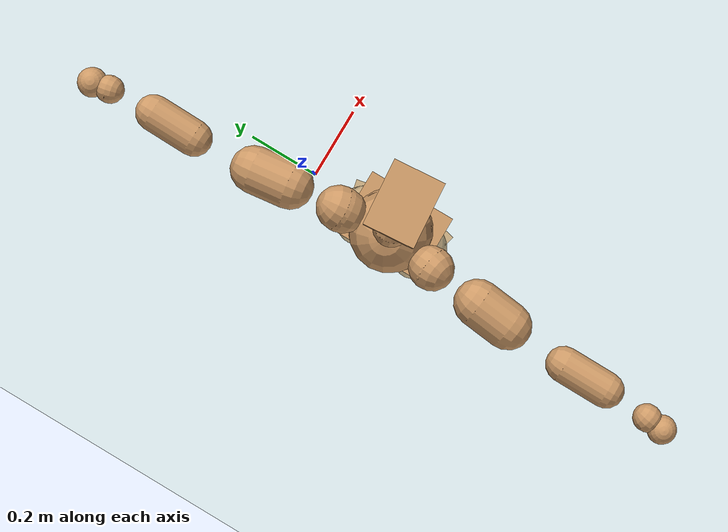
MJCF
<mujoco model="humanoid">
  <compiler coordinate="local" angle="radian"/>
  <default>
    <joint damping="0.0" armature="0.01" stiffness="0.0" limited="true"/>
    <geom conaffinity="1" condim="3" contype="7" margin="0.001" rgba="0.8 0.6 .4 1"/>
  </default>
  <asset>
    <texture type="skybox" builtin="gradient" rgb1=".4 .5 .6" rgb2="0 0 0" width="100" height="100"/>
    <texture builtin="flat" height="1278" mark="cross" markrgb="1 1 1" name="texgeom" random="0.01" rgb1="0.8 0.6 0.4" rgb2="0.8 0.6 0.4" type="cube" width="127"/>
    <texture builtin="checker" height="100" name="texplane" rgb1="0 0 0" rgb2="0.8 0.8 0.8" type="2d" width="100"/>
    <material name="MatPlane" reflectance="0.5" shininess="1" specular="1" texrepeat="60 60" texture="texplane"/>
    <material name="geom" texture="texgeom" texuniform="true"/>
  </asset>
  <worldbody>
    <light cutoff="100" diffuse="1 1 1" dir="-0 0 -1.3" directional="true" exponent="1" pos="0 0 1.3" specular=".1 .1 .1"/>
    <geom conaffinity="1" condim="3" name="floor" pos="0 0 0" rgba="0.8 0.9 0.8 1" size="100 100 .2" type="plane" material="MatPlane"/>
    <body name="Pelvis" pos="-0.0003 -0.2564 0.0376">
      <freejoint name="Pelvis"/>
      <geom type="box" contype="1" conaffinity="1" density="5359.375498" pos="-0.0068 -0.0001 -0.0134" size="0.0945 0.1253 0.0456" quat="1.0000 0.0000 0.0000 0.0042" name="Pelvis"/>
      <body name="L_Hip" pos="-0.0055 0.0817 -0.0999">
        <joint name="L_Hip_x" type="hinge" pos="0 0 0" axis="1 0 0" stiffness="1600" damping="160" armature="0.02" range="-180.0000 180.0000"/>
        <joint name="L_Hip_y" type="hinge" pos="0 0 0" axis="0 1 0" stiffness="1600" damping="160" armature="0.02" range="-180.0000 180.0000"/>
        <joint name="L_Hip_z" type="hinge" pos="0 0 0" axis="0 0 1" stiffness="1600" damping="160" armature="0.02" range="-180.0000 180.0000"/>
        <geom type="capsule" contype="1" conaffinity="1" density="2040.816327" size="0.0715" fromto="-0.0016 0.0086 -0.1012 -0.0044 0.0242 -0.2844" name="L_Hip"/>
        <body name="L_Knee" pos="-0.006 0.0328 -0.3856">
          <joint name="L_Knee_x" type="hinge" pos="0 0 0" axis="1 0 0" stiffness="1600" damping="160" armature="0.02" range="-180.0000 180.0000"/>
          <joint name="L_Knee_y" type="hinge" pos="0 0 0" axis="0 1 0" stiffness="1600" damping="160" armature="0.02" range="-180.0000 180.0000"/>
          <joint name="L_Knee_z" type="hinge" pos="0 0 0" axis="0 0 1" stiffness="1600" damping="160" armature="0.02" range="-180.0000 180.0000"/>
          <geom type="capsule" contype="1" conaffinity="1" density="1234.567901" size="0.0617" fromto="-0.0113 -0.0027 -0.0910 -0.0393 -0.0095 -0.3156" name="L_Knee"/>
          <body name="L_Ankle" pos="-0.0506 -0.0123 -0.4066">
            <joint name="L_Ankle_x" type="hinge" pos="0 0 0" axis="1 0 0" stiffness="1600" damping="160" armature="0.02" range="-180.0000 180.0000"/>
            <joint name="L_Ankle_y" type="hinge" pos="0 0 0" axis="0 1 0" stiffness="1600" damping="160" armature="0.02" range="-180.0000 180.0000"/>
            <joint name="L_Ankle_z" type="hinge" pos="0 0 0" axis="0 0 1" stiffness="1600" damping="160" armature="0.02" range="-180.0000 180.0000"/>
            <geom type="box" contype="1" conaffinity="1" density="1000.000012" pos="0.0628 0.0135 -0.0295" size="0.0908 0.0513 0.0215" quat="0.9944 0.0000 0.0000 0.1056" name="L_Ankle"/>
            <body name="L_Toe" pos="0.1256 0.027 -0.0589">
              <joint name="L_Toe_x" type="hinge" pos="0 0 0" axis="1 0 0" stiffness="1000" damping="100" armature="0.02" range="-180.0000 180.0000"/>
              <joint name="L_Toe_y" type="hinge" pos="0 0 0" axis="0 1 0" stiffness="1000" damping="100" armature="0.02" range="-180.0000 180.0000"/>
              <joint name="L_Toe_z" type="hinge" pos="0 0 0" axis="0 0 1" stiffness="1000" damping="100" armature="0.02" range="-180.0000 180.0000"/>
              <geom type="box" contype="1" conaffinity="1" density="8537290.948561" pos="0.0000 0.0000 0.0312" size="0.001 0.0025 0.0012" quat="0.9938 0.0000 0.0000 0.1115" name="L_Toe"/>
            </body>
          </body>
        </body>
      </body>
      <body name="R_Hip" pos="-0.0032 -0.0775 -0.0987">
        <joint name="R_Hip_x" type="hinge" pos="0 0 0" axis="1 0 0" stiffness="1600" damping="160" armature="0.02" range="-180.0000 180.0000"/>
        <joint name="R_Hip_y" type="hinge" pos="0 0 0" axis="0 1 0" stiffness="1600" damping="160" armature="0.02" range="-180.0000 180.0000"/>
        <joint name="R_Hip_z" type="hinge" pos="0 0 0" axis="0 0 1" stiffness="1600" damping="160" armature="0.02" range="-180.0000 180.0000"/>
        <geom type="capsule" contype="1" conaffinity="1" density="2040.816327" size="0.0707" fromto="-0.0025 -0.0099 -0.1002 -0.0073 -0.0290 -0.2936" name="R_Hip"/>
        <body name="R_Knee" pos="-0.0097 -0.0389 -0.3938">
          <joint name="R_Knee_x" type="hinge" pos="0 0 0" axis="1 0 0" stiffness="1600" damping="160" armature="0.02" range="-180.0000 180.0000"/>
          <joint name="R_Knee_y" type="hinge" pos="0 0 0" axis="0 1 0" stiffness="1600" damping="160" armature="0.02" range="-180.0000 180.0000"/>
          <joint name="R_Knee_z" type="hinge" pos="0 0 0" axis="0 0 1" stiffness="1600" damping="160" armature="0.02" range="-180.0000 180.0000"/>
          <geom type="capsule" contype="1" conaffinity="1" density="1234.567901" size="0.0618" fromto="-0.0112 0.0031 -0.0911 -0.0389 0.0107 -0.3149" name="R_Knee"/>
          <body name="R_Ankle" pos="-0.0501 0.0139 -0.4059">
            <joint name="R_Ankle_x" type="hinge" pos="0 0 0" axis="1 0 0" stiffness="1600" damping="160" armature="0.02" range="-180.0000 180.0000"/>
            <joint name="R_Ankle_y" type="hinge" pos="0 0 0" axis="0 1 0" stiffness="1600" damping="160" armature="0.02" range="-180.0000 180.0000"/>
            <joint name="R_Ankle_z" type="hinge" pos="0 0 0" axis="0 0 1" stiffness="1600" damping="160" armature="0.02" range="-180.0000 180.0000"/>
            <geom type="box" contype="1" conaffinity="1" density="999.999975" pos="0.0648 -0.0136 -0.0248" size="0.0907 0.0502 0.0216" quat="0.9947 0.0000 0.0000 -0.1033" name="R_Ankle"/>
            <body name="R_Toe" pos="0.1295 -0.0272 -0.0496">
              <joint name="R_Toe_x" type="hinge" pos="0 0 0" axis="1 0 0" stiffness="1000" damping="100" armature="0.02" range="-180.0000 180.0000"/>
              <joint name="R_Toe_y" type="hinge" pos="0 0 0" axis="0 1 0" stiffness="1000" damping="100" armature="0.02" range="-180.0000 180.0000"/>
              <joint name="R_Toe_z" type="hinge" pos="0 0 0" axis="0 0 1" stiffness="1000" damping="100" armature="0.02" range="-180.0000 180.0000"/>
              <geom type="box" contype="1" conaffinity="1" density="8388225.404211" pos="0.0000 0.0000 0.0285" size="0.0009 0.0025 0.0013" quat="0.9955 0.0000 0.0000 -0.0945" name="R_Toe"/>
            </body>
          </body>
        </body>
      </body>
      <body name="Torso" pos="-0.0323 -0.0045 0.1182">
        <joint name="Torso_x" type="hinge" pos="0 0 0" axis="1 0 0" stiffness="2000" damping="200" armature="0.02" range="-180.0000 180.0000"/>
        <joint name="Torso_y" type="hinge" pos="0 0 0" axis="0 1 0" stiffness="2000" damping="200" armature="0.02" range="-180.0000 180.0000"/>
        <joint name="Torso_z" type="hinge" pos="0 0 0" axis="0 0 1" stiffness="2000" damping="200" armature="0.02" range="-180.0000 180.0000"/>
        <geom type="capsule" contype="1" conaffinity="1" density="2040.816327" size="0.08" fromto="-0.0048 0.0028 0.0783 -0.0049 0.0029 0.0803" name="Torso"/>
        <body name="Spine" pos="-0.0097 0.0057 0.1586">
          <joint name="Spine_x" type="hinge" pos="0 0 0" axis="1 0 0" stiffness="2000" damping="200" armature="0.02" range="-180.0000 180.0000"/>
          <joint name="Spine_y" type="hinge" pos="0 0 0" axis="0 1 0" stiffness="2000" damping="200" armature="0.02" range="-180.0000 180.0000"/>
          <joint name="Spine_z" type="hinge" pos="0 0 0" axis="0 0 1" stiffness="2000" damping="200" armature="0.02" range="-180.0000 180.0000"/>
          <geom type="capsule" contype="1" conaffinity="1" density="2040.816327" size="0.0769" fromto="0.0400 0.0012 0.0657 -0.0050 -0.0001 -0.0082" name="Spine"/>
          <body name="Chest" pos="0.035 0.001 0.0575">
            <joint name="Chest_x" type="hinge" pos="0 0 0" axis="1 0 0" stiffness="2000" damping="200" armature="0.02" range="-180.0000 180.0000"/>
            <joint name="Chest_y" type="hinge" pos="0 0 0" axis="0 1 0" stiffness="2000" damping="200" armature="0.02" range="-180.0000 180.0000"/>
            <joint name="Chest_z" type="hinge" pos="0 0 0" axis="0 0 1" stiffness="2000" damping="200" armature="0.02" range="-180.0000 180.0000"/>
            <geom type="capsule" contype="1" conaffinity="1" density="2040.816327" size="0.1024" fromto="-0.0270 -0.0004 0.0987 -0.0181 -0.0003 0.0661" name="Chest"/>
            <body name="Neck" pos="-0.0497 -0.0013 0.2371">
              <joint name="Neck_x" type="hinge" pos="0 0 0" axis="1 0 0" stiffness="1000" damping="100" armature="0.02" range="-180.0000 180.0000"/>
              <joint name="Neck_y" type="hinge" pos="0 0 0" axis="0 1 0" stiffness="1000" damping="100" armature="0.02" range="-180.0000 180.0000"/>
              <joint name="Neck_z" type="hinge" pos="0 0 0" axis="0 0 1" stiffness="1000" damping="100" armature="0.02" range="-180.0000 180.0000"/>
              <geom type="capsule" contype="1" conaffinity="1" density="1000" size="0.0447" fromto="0.0279 0.0016 0.0357 0.0292 0.0017 0.0373" name="Neck"/>
              <body name="Head" pos="0.0571 0.0033 0.073">
                <joint name="Head_x" type="hinge" pos="0 0 0" axis="1 0 0" stiffness="1000" damping="100" armature="0.02" range="-180.0000 180.0000"/>
                <joint name="Head_y" type="hinge" pos="0 0 0" axis="0 1 0" stiffness="1000" damping="100" armature="0.02" range="-180.0000 180.0000"/>
                <joint name="Head_z" type="hinge" pos="0 0 0" axis="0 0 1" stiffness="1000" damping="100" armature="0.02" range="-180.0000 180.0000"/>
                <geom type="box" contype="1" conaffinity="1" density="2250.000041" pos="0.0296 0.0026 0.0375" size="0.0809 0.0633 0.056" quat="0.9990 0.0000 0.0000 0.0446" name="Head"/>
              </body>
            </body>
            <body name="L_Thorax" pos="-0.039 0.0807 0.1304">
              <joint name="L_Thorax_x" type="hinge" pos="0 0 0" axis="1 0 0" stiffness="1000" damping="100" armature="0.02" range="-180.0000 180.0000"/>
              <joint name="L_Thorax_y" type="hinge" pos="0 0 0" axis="0 1 0" stiffness="1000" damping="100" armature="0.02" range="-180.0000 180.0000"/>
              <joint name="L_Thorax_z" type="hinge" pos="0 0 0" axis="0 0 1" stiffness="1000" damping="100" armature="0.02" range="-180.0000 180.0000"/>
              <geom type="capsule" contype="1" conaffinity="1" density="1000" size="0.0561" fromto="-0.0042 0.0520 0.0206 -0.0033 0.0407 0.0161" name="L_Thorax"/>
              <body name="L_Shoulder" pos="-0.0075 0.0927 0.0367">
                <joint name="L_Shoulder_x" type="hinge" pos="0 0 0" axis="1 0 0" stiffness="1000" damping="100" armature="0.02" range="-720.0000 720.0000"/>
                <joint name="L_Shoulder_y" type="hinge" pos="0 0 0" axis="0 1 0" stiffness="1000" damping="100" armature="0.02" range="-720.0000 720.0000"/>
                <joint name="L_Shoulder_z" type="hinge" pos="0 0 0" axis="0 0 1" stiffness="1000" damping="100" armature="0.02" range="-720.0000 720.0000"/>
                <geom type="capsule" contype="1" conaffinity="1" density="1000" size="0.0582" fromto="-0.0113 0.0873 -0.0060 -0.0234 0.1803 -0.0124" name="L_Shoulder"/>
                <body name="L_Elbow" pos="-0.0347 0.2676 -0.0184">
                  <joint name="L_Elbow_x" type="hinge" pos="0 0 0" axis="1 0 0" stiffness="1000" damping="100" armature="0.02" range="-720.0000 720.0000"/>
                  <joint name="L_Elbow_y" type="hinge" pos="0 0 0" axis="0 1 0" stiffness="1000" damping="100" armature="0.02" range="-720.0000 720.0000"/>
                  <joint name="L_Elbow_z" type="hinge" pos="0 0 0" axis="0 0 1" stiffness="1000" damping="100" armature="0.02" range="-720.0000 720.0000"/>
                  <geom type="capsule" contype="1" conaffinity="1" density="1000" size="0.0443" fromto="0.0011 0.0742 0.0028 0.0027 0.1877 0.0070" name="L_Elbow"/>
                  <body name="L_Wrist" pos="0.0037 0.262 0.0097">
                    <joint name="L_Wrist_x" type="hinge" pos="0 0 0" axis="1 0 0" stiffness="600" damping="60" armature="0.02" range="-180.0000 180.0000"/>
                    <joint name="L_Wrist_y" type="hinge" pos="0 0 0" axis="0 1 0" stiffness="600" damping="60" armature="0.02" range="-180.0000 180.0000"/>
                    <joint name="L_Wrist_z" type="hinge" pos="0 0 0" axis="0 0 1" stiffness="600" damping="60" armature="0.02" range="-180.0000 180.0000"/>
                    <geom type="capsule" contype="1" conaffinity="1" density="1000" size="0.0343" fromto="-0.0072 0.0442 -0.0054 -0.0076 0.0462 -0.0057" name="L_Wrist"/>
                    <body name="L_Hand" pos="-0.0148 0.0904 -0.0111">
                      <joint name="L_Hand_x" type="hinge" pos="0 0 0" axis="1 0 0" stiffness="600" damping="60" armature="0.02" range="-180.0000 180.0000"/>
                      <joint name="L_Hand_y" type="hinge" pos="0 0 0" axis="0 1 0" stiffness="600" damping="60" armature="0.02" range="-180.0000 180.0000"/>
                      <joint name="L_Hand_z" type="hinge" pos="0 0 0" axis="0 0 1" stiffness="600" damping="60" armature="0.02" range="-180.0000 180.0000"/>
                      <geom type="sphere" contype="1" conaffinity="1" density="1000" size="0.0365" pos="0.0000 0.0000 0.0000" name="L_Hand"/>
                    </body>
                  </body>
                </body>
              </body>
            </body>
            <body name="R_Thorax" pos="-0.0468 -0.0814 0.127">
              <joint name="R_Thorax_x" type="hinge" pos="0 0 0" axis="1 0 0" stiffness="1000" damping="100" armature="0.02" range="-180.0000 180.0000"/>
              <joint name="R_Thorax_y" type="hinge" pos="0 0 0" axis="0 1 0" stiffness="1000" damping="100" armature="0.02" range="-180.0000 180.0000"/>
              <joint name="R_Thorax_z" type="hinge" pos="0 0 0" axis="0 0 1" stiffness="1000" damping="100" armature="0.02" range="-180.0000 180.0000"/>
              <geom type="capsule" contype="1" conaffinity="1" density="1000" size="0.0546" fromto="-0.0049 -0.0511 0.0184 -0.0045 -0.0473 0.0170" name="R_Thorax"/>
              <body name="R_Shoulder" pos="-0.0094 -0.0984 0.0354">
                <joint name="R_Shoulder_x" type="hinge" pos="0 0 0" axis="1 0 0" stiffness="1000" damping="100" armature="0.02" range="-720.0000 720.0000"/>
                <joint name="R_Shoulder_y" type="hinge" pos="0 0 0" axis="0 1 0" stiffness="1000" damping="100" armature="0.02" range="-720.0000 720.0000"/>
                <joint name="R_Shoulder_z" type="hinge" pos="0 0 0" axis="0 0 1" stiffness="1000" damping="100" armature="0.02" range="-720.0000 720.0000"/>
                <geom type="capsule" contype="1" conaffinity="1" density="1000" size="0.0587" fromto="-0.0090 -0.0881 -0.0054 -0.0183 -0.1783 -0.0109" name="R_Shoulder"/>
                <body name="R_Elbow" pos="-0.0273 -0.2664 -0.0162">
                  <joint name="R_Elbow_x" type="hinge" pos="0 0 0" axis="1 0 0" stiffness="1000" damping="100" armature="0.02" range="-720.0000 720.0000"/>
                  <joint name="R_Elbow_y" type="hinge" pos="0 0 0" axis="0 1 0" stiffness="1000" damping="100" armature="0.02" range="-720.0000 720.0000"/>
                  <joint name="R_Elbow_z" type="hinge" pos="0 0 0" axis="0 0 1" stiffness="1000" damping="100" armature="0.02" range="-720.0000 720.0000"/>
                  <geom type="capsule" contype="1" conaffinity="1" density="1000" size="0.0439" fromto="-0.0000 -0.0738 0.0025 -0.0001 -0.1920 0.0065" name="R_Elbow"/>
                  <body name="R_Wrist" pos="-0.0002 -0.2658 0.0091">
                    <joint name="R_Wrist_x" type="hinge" pos="0 0 0" axis="1 0 0" stiffness="600" damping="60" armature="0.02" range="-180.0000 180.0000"/>
                    <joint name="R_Wrist_y" type="hinge" pos="0 0 0" axis="0 1 0" stiffness="600" damping="60" armature="0.02" range="-180.0000 180.0000"/>
                    <joint name="R_Wrist_z" type="hinge" pos="0 0 0" axis="0 0 1" stiffness="600" damping="60" armature="0.02" range="-180.0000 180.0000"/>
                    <geom type="capsule" contype="1" conaffinity="1" density="1000" size="0.0345" fromto="-0.0057 -0.0439 -0.0039 -0.0060 -0.0459 -0.0041" name="R_Wrist"/>
                    <body name="R_Hand" pos="-0.0116 -0.0898 -0.008">
                      <joint name="R_Hand_x" type="hinge" pos="0 0 0" axis="1 0 0" stiffness="600" damping="60" armature="0.02" range="-180.0000 180.0000"/>
                      <joint name="R_Hand_y" type="hinge" pos="0 0 0" axis="0 1 0" stiffness="600" damping="60" armature="0.02" range="-180.0000 180.0000"/>
                      <joint name="R_Hand_z" type="hinge" pos="0 0 0" axis="0 0 1" stiffness="600" damping="60" armature="0.02" range="-180.0000 180.0000"/>
                      <geom type="sphere" contype="1" conaffinity="1" density="1000" size="0.0361" pos="0.0000 0.0000 0.0000" name="R_Hand"/>
                    </body>
                  </body>
                </body>
              </body>
            </body>
          </body>
        </body>
      </body>
    </body>
  </worldbody>
  <actuator>
    <motor name="L_Hip_x" joint="L_Hip_x" gear="500"/>
    <motor name="L_Hip_y" joint="L_Hip_y" gear="500"/>
    <motor name="L_Hip_z" joint="L_Hip_z" gear="500"/>
    <motor name="L_Knee_x" joint="L_Knee_x" gear="500"/>
    <motor name="L_Knee_y" joint="L_Knee_y" gear="500"/>
    <motor name="L_Knee_z" joint="L_Knee_z" gear="500"/>
    <motor name="L_Ankle_x" joint="L_Ankle_x" gear="500"/>
    <motor name="L_Ankle_y" joint="L_Ankle_y" gear="500"/>
    <motor name="L_Ankle_z" joint="L_Ankle_z" gear="500"/>
    <motor name="L_Toe_x" joint="L_Toe_x" gear="500"/>
    <motor name="L_Toe_y" joint="L_Toe_y" gear="500"/>
    <motor name="L_Toe_z" joint="L_Toe_z" gear="500"/>
    <motor name="R_Hip_x" joint="R_Hip_x" gear="500"/>
    <motor name="R_Hip_y" joint="R_Hip_y" gear="500"/>
    <motor name="R_Hip_z" joint="R_Hip_z" gear="500"/>
    <motor name="R_Knee_x" joint="R_Knee_x" gear="500"/>
    <motor name="R_Knee_y" joint="R_Knee_y" gear="500"/>
    <motor name="R_Knee_z" joint="R_Knee_z" gear="500"/>
    <motor name="R_Ankle_x" joint="R_Ankle_x" gear="500"/>
    <motor name="R_Ankle_y" joint="R_Ankle_y" gear="500"/>
    <motor name="R_Ankle_z" joint="R_Ankle_z" gear="500"/>
    <motor name="R_Toe_x" joint="R_Toe_x" gear="500"/>
    <motor name="R_Toe_y" joint="R_Toe_y" gear="500"/>
    <motor name="R_Toe_z" joint="R_Toe_z" gear="500"/>
    <motor name="Torso_x" joint="Torso_x" gear="500"/>
    <motor name="Torso_y" joint="Torso_y" gear="500"/>
    <motor name="Torso_z" joint="Torso_z" gear="500"/>
    <motor name="Spine_x" joint="Spine_x" gear="500"/>
    <motor name="Spine_y" joint="Spine_y" gear="500"/>
    <motor name="Spine_z" joint="Spine_z" gear="500"/>
    <motor name="Chest_x" joint="Chest_x" gear="500"/>
    <motor name="Chest_y" joint="Chest_y" gear="500"/>
    <motor name="Chest_z" joint="Chest_z" gear="500"/>
    <motor name="Neck_x" joint="Neck_x" gear="500"/>
    <motor name="Neck_y" joint="Neck_y" gear="500"/>
    <motor name="Neck_z" joint="Neck_z" gear="500"/>
    <motor name="Head_x" joint="Head_x" gear="500"/>
    <motor name="Head_y" joint="Head_y" gear="500"/>
    <motor name="Head_z" joint="Head_z" gear="500"/>
    <motor name="L_Thorax_x" joint="L_Thorax_x" gear="500"/>
    <motor name="L_Thorax_y" joint="L_Thorax_y" gear="500"/>
    <motor name="L_Thorax_z" joint="L_Thorax_z" gear="500"/>
    <motor name="L_Shoulder_x" joint="L_Shoulder_x" gear="500"/>
    <motor name="L_Shoulder_y" joint="L_Shoulder_y" gear="500"/>
    <motor name="L_Shoulder_z" joint="L_Shoulder_z" gear="500"/>
    <motor name="L_Elbow_x" joint="L_Elbow_x" gear="500"/>
    <motor name="L_Elbow_y" joint="L_Elbow_y" gear="500"/>
    <motor name="L_Elbow_z" joint="L_Elbow_z" gear="500"/>
    <motor name="L_Wrist_x" joint="L_Wrist_x" gear="500"/>
    <motor name="L_Wrist_y" joint="L_Wrist_y" gear="500"/>
    <motor name="L_Wrist_z" joint="L_Wrist_z" gear="500"/>
    <motor name="L_Hand_x" joint="L_Hand_x" gear="500"/>
    <motor name="L_Hand_y" joint="L_Hand_y" gear="500"/>
    <motor name="L_Hand_z" joint="L_Hand_z" gear="500"/>
    <motor name="R_Thorax_x" joint="R_Thorax_x" gear="500"/>
    <motor name="R_Thorax_y" joint="R_Thorax_y" gear="500"/>
    <motor name="R_Thorax_z" joint="R_Thorax_z" gear="500"/>
    <motor name="R_Shoulder_x" joint="R_Shoulder_x" gear="500"/>
    <motor name="R_Shoulder_y" joint="R_Shoulder_y" gear="500"/>
    <motor name="R_Shoulder_z" joint="R_Shoulder_z" gear="500"/>
    <motor name="R_Elbow_x" joint="R_Elbow_x" gear="500"/>
    <motor name="R_Elbow_y" joint="R_Elbow_y" gear="500"/>
    <motor name="R_Elbow_z" joint="R_Elbow_z" gear="500"/>
    <motor name="R_Wrist_x" joint="R_Wrist_x" gear="500"/>
    <motor name="R_Wrist_y" joint="R_Wrist_y" gear="500"/>
    <motor name="R_Wrist_z" joint="R_Wrist_z" gear="500"/>
    <motor name="R_Hand_x" joint="R_Hand_x" gear="500"/>
    <motor name="R_Hand_y" joint="R_Hand_y" gear="500"/>
    <motor name="R_Hand_z" joint="R_Hand_z" gear="500"/>
  </actuator>
  <contact>
    <exclude body1="Torso" body2="Chest"/>
    <exclude body1="Head" body2="Chest"/>
    <exclude body1="R_Knee" body2="R_Toe"/>
    <exclude body1="R_Knee" body2="L_Ankle"/>
    <exclude body1="R_Knee" body2="L_Toe"/>
    <exclude body1="L_Knee" body2="L_Toe"/>
    <exclude body1="L_Knee" body2="R_Ankle"/>
    <exclude body1="L_Knee" body2="R_Toe"/>
    <exclude body1="L_Shoulder" body2="Chest"/>
    <exclude body1="R_Shoulder" body2="Chest"/>
  </contact>
  <sensor/>
  <size njmax="700" nconmax="700"/>
</mujoco>
